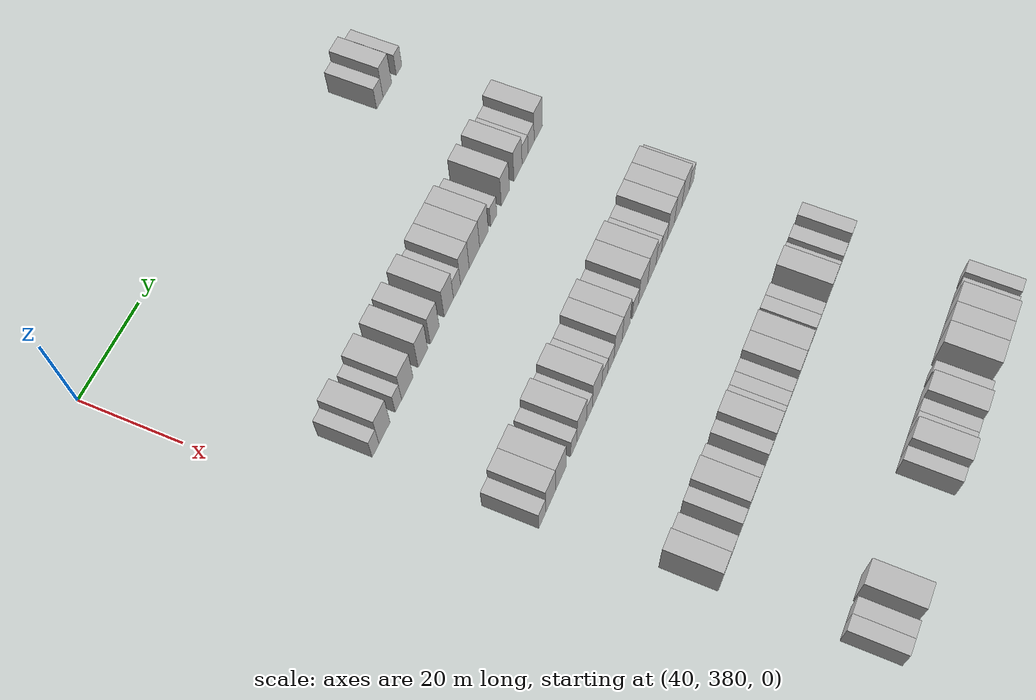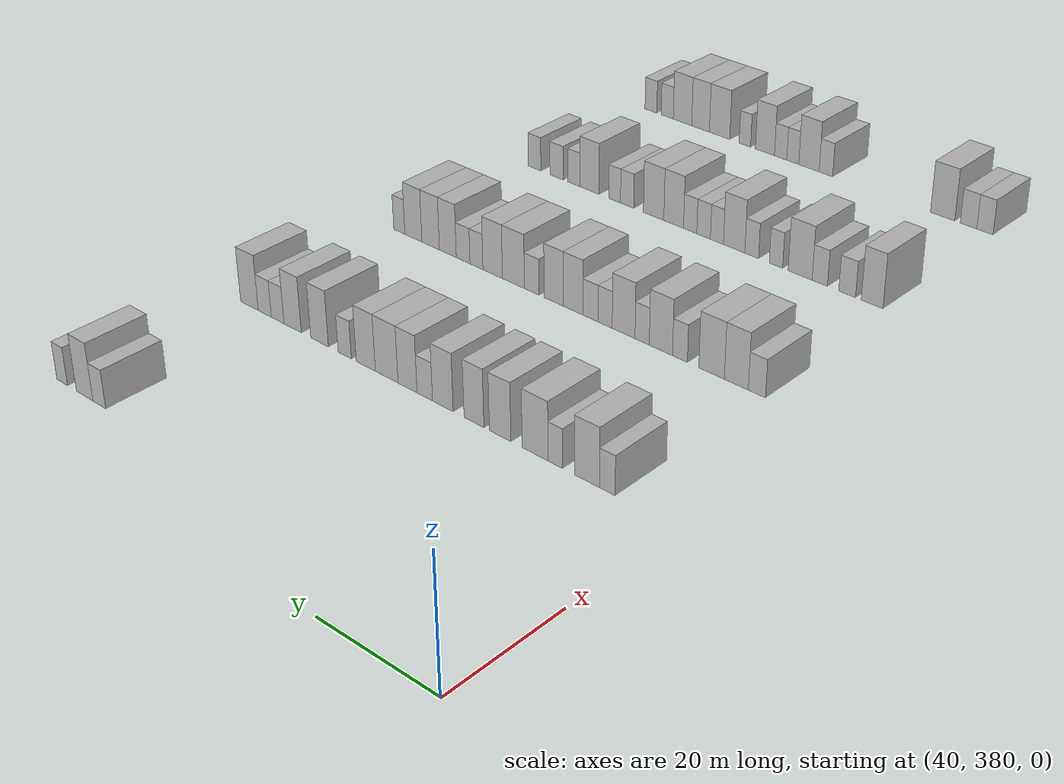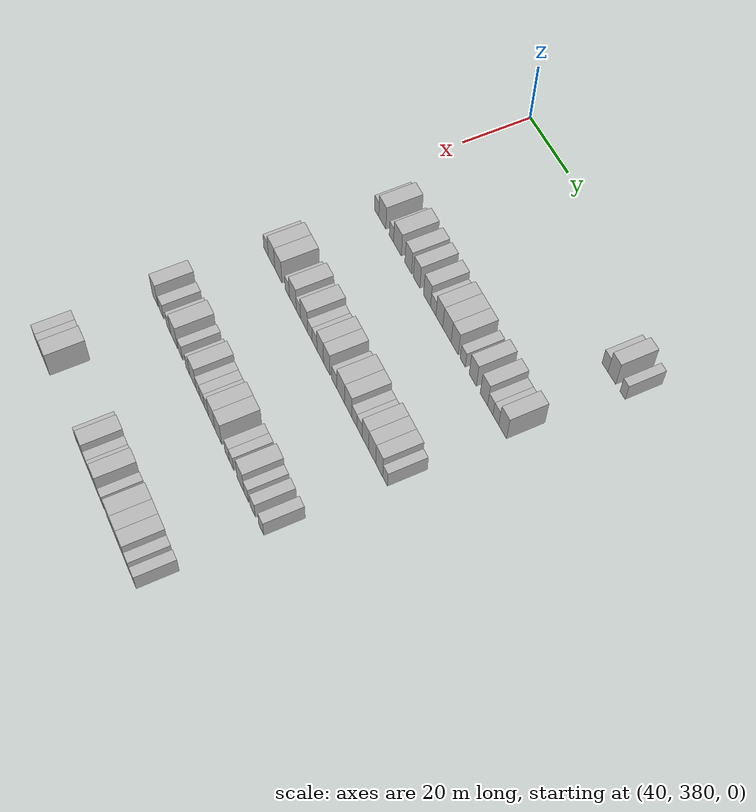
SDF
<sdf version="1.6">
 <world name="default">
  <model name="building_448">
   <static>1</static>
   <pose>55.0000 454.1444 0 0.000000 0.000000 0.000000</pose>
   <link name="link">
    <pose>0 0 3.00 0 0 0</pose>
    <collision name="collision"><geometry><box><size>10.0000 2.7748 6.0000</size></box></geometry></collision>
    <visual name="visual">
     <cast_shadows>0</cast_shadows>
     <geometry><box><size>10.0000 2.7748 6.0000</size></box></geometry>
     <material>
      <script>
       <uri>model://HANNAS_wall/materials/scripts</uri>
       <uri>model://HANNAS_wall/materials/textures</uri>
       <name>vrc/HANNAS_wall</name>
      </script>
     </material>
    </visual>
   </link>
  </model>
  <model name="building_449">
   <static>1</static>
   <pose>55.0000 457.3681 0 0.000000 0.000000 0.000000</pose>
   <link name="link">
    <pose>0 0 4.50 0 0 0</pose>
    <collision name="collision"><geometry><box><size>10.0000 3.6726 9.0000</size></box></geometry></collision>
    <visual name="visual">
     <cast_shadows>0</cast_shadows>
     <geometry><box><size>10.0000 3.6726 9.0000</size></box></geometry>
     <material>
      <script>
       <uri>model://HANNAS_wall/materials/scripts</uri>
       <uri>model://HANNAS_wall/materials/textures</uri>
       <name>vrc/HANNAS_wall</name>
      </script>
     </material>
    </visual>
   </link>
  </model>
  <model name="building_450">
   <static>1</static>
   <pose>55.0000 462.4099 0 0.000000 0.000000 0.000000</pose>
   <link name="link">
    <pose>0 0 3.00 0 0 0</pose>
    <collision name="collision"><geometry><box><size>10.0000 2.4111 6.0000</size></box></geometry></collision>
    <visual name="visual">
     <cast_shadows>0</cast_shadows>
     <geometry><box><size>10.0000 2.4111 6.0000</size></box></geometry>
     <material>
      <script>
       <uri>model://HANNAS_wall/materials/scripts</uri>
       <uri>model://HANNAS_wall/materials/textures</uri>
       <name>vrc/HANNAS_wall</name>
      </script>
     </material>
    </visual>
   </link>
  </model>
  <model name="building_667">
   <static>1</static>
   <pose>85.0000 391.1163 0 0.000000 0.000000 0.000000</pose>
   <link name="link">
    <pose>0 0 3.00 0 0 0</pose>
    <collision name="collision"><geometry><box><size>10.0000 2.5467 6.0000</size></box></geometry></collision>
    <visual name="visual">
     <cast_shadows>0</cast_shadows>
     <geometry><box><size>10.0000 2.5467 6.0000</size></box></geometry>
     <material>
      <script>
       <uri>model://HANNAS_wall/materials/scripts</uri>
       <uri>model://HANNAS_wall/materials/textures</uri>
       <name>vrc/HANNAS_wall</name>
      </script>
     </material>
    </visual>
   </link>
  </model>
  <model name="building_668">
   <static>1</static>
   <pose>85.0000 394.4743 0 0.000000 0.000000 0.000000</pose>
   <link name="link">
    <pose>0 0 4.50 0 0 0</pose>
    <collision name="collision"><geometry><box><size>10.0000 4.1693 9.0000</size></box></geometry></collision>
    <visual name="visual">
     <cast_shadows>0</cast_shadows>
     <geometry><box><size>10.0000 4.1693 9.0000</size></box></geometry>
     <material>
      <script>
       <uri>model://HANNAS_wall/materials/scripts</uri>
       <uri>model://HANNAS_wall/materials/textures</uri>
       <name>vrc/HANNAS_wall</name>
      </script>
     </material>
    </visual>
   </link>
  </model>
  <model name="building_669">
   <static>1</static>
   <pose>85.0000 399.7932 0 0.000000 0.000000 0.000000</pose>
   <link name="link">
    <pose>0 0 3.00 0 0 0</pose>
    <collision name="collision"><geometry><box><size>10.0000 2.4685 6.0000</size></box></geometry></collision>
    <visual name="visual">
     <cast_shadows>0</cast_shadows>
     <geometry><box><size>10.0000 2.4685 6.0000</size></box></geometry>
     <material>
      <script>
       <uri>model://HANNAS_wall/materials/scripts</uri>
       <uri>model://HANNAS_wall/materials/textures</uri>
       <name>vrc/HANNAS_wall</name>
      </script>
     </material>
    </visual>
   </link>
  </model>
  <model name="building_670">
   <static>1</static>
   <pose>85.0000 403.2650 0 0.000000 0.000000 0.000000</pose>
   <link name="link">
    <pose>0 0 4.50 0 0 0</pose>
    <collision name="collision"><geometry><box><size>10.0000 4.4751 9.0000</size></box></geometry></collision>
    <visual name="visual">
     <cast_shadows>0</cast_shadows>
     <geometry><box><size>10.0000 4.4751 9.0000</size></box></geometry>
     <material>
      <script>
       <uri>model://HANNAS_wall/materials/scripts</uri>
       <uri>model://HANNAS_wall/materials/textures</uri>
       <name>vrc/HANNAS_wall</name>
      </script>
     </material>
    </visual>
   </link>
  </model>
  <model name="building_671">
   <static>1</static>
   <pose>85.0000 409.4116 0 0.000000 0.000000 0.000000</pose>
   <link name="link">
    <pose>0 0 4.50 0 0 0</pose>
    <collision name="collision"><geometry><box><size>10.0000 3.8179 9.0000</size></box></geometry></collision>
    <visual name="visual">
     <cast_shadows>0</cast_shadows>
     <geometry><box><size>10.0000 3.8179 9.0000</size></box></geometry>
     <material>
      <script>
       <uri>model://HANNAS_wall/materials/scripts</uri>
       <uri>model://HANNAS_wall/materials/textures</uri>
       <name>vrc/HANNAS_wall</name>
      </script>
     </material>
    </visual>
   </link>
  </model>
  <model name="building_672">
   <static>1</static>
   <pose>85.0000 414.1322 0 0.000000 0.000000 0.000000</pose>
   <link name="link">
    <pose>0 0 4.50 0 0 0</pose>
    <collision name="collision"><geometry><box><size>10.0000 3.6234 9.0000</size></box></geometry></collision>
    <visual name="visual">
     <cast_shadows>0</cast_shadows>
     <geometry><box><size>10.0000 3.6234 9.0000</size></box></geometry>
     <material>
      <script>
       <uri>model://HANNAS_wall/materials/scripts</uri>
       <uri>model://HANNAS_wall/materials/textures</uri>
       <name>vrc/HANNAS_wall</name>
      </script>
     </material>
    </visual>
   </link>
  </model>
  <model name="building_673">
   <static>1</static>
   <pose>85.0000 419.8813 0 0.000000 0.000000 0.000000</pose>
   <link name="link">
    <pose>0 0 4.50 0 0 0</pose>
    <collision name="collision"><geometry><box><size>10.0000 3.8748 9.0000</size></box></geometry></collision>
    <visual name="visual">
     <cast_shadows>0</cast_shadows>
     <geometry><box><size>10.0000 3.8748 9.0000</size></box></geometry>
     <material>
      <script>
       <uri>model://HANNAS_wall/materials/scripts</uri>
       <uri>model://HANNAS_wall/materials/textures</uri>
       <name>vrc/HANNAS_wall</name>
      </script>
     </material>
    </visual>
   </link>
  </model>
  <model name="building_674">
   <static>1</static>
   <pose>85.0000 423.2856 0 0.000000 0.000000 0.000000</pose>
   <link name="link">
    <pose>0 0 3.00 0 0 0</pose>
    <collision name="collision"><geometry><box><size>10.0000 2.9337 6.0000</size></box></geometry></collision>
    <visual name="visual">
     <cast_shadows>0</cast_shadows>
     <geometry><box><size>10.0000 2.9337 6.0000</size></box></geometry>
     <material>
      <script>
       <uri>model://HANNAS_wall/materials/scripts</uri>
       <uri>model://HANNAS_wall/materials/textures</uri>
       <name>vrc/HANNAS_wall</name>
      </script>
     </material>
    </visual>
   </link>
  </model>
  <model name="building_675">
   <static>1</static>
   <pose>85.0000 426.5875 0 0.000000 0.000000 0.000000</pose>
   <link name="link">
    <pose>0 0 4.50 0 0 0</pose>
    <collision name="collision"><geometry><box><size>10.0000 3.6701 9.0000</size></box></geometry></collision>
    <visual name="visual">
     <cast_shadows>0</cast_shadows>
     <geometry><box><size>10.0000 3.6701 9.0000</size></box></geometry>
     <material>
      <script>
       <uri>model://HANNAS_wall/materials/scripts</uri>
       <uri>model://HANNAS_wall/materials/textures</uri>
       <name>vrc/HANNAS_wall</name>
      </script>
     </material>
    </visual>
   </link>
  </model>
  <model name="building_676">
   <static>1</static>
   <pose>85.0000 430.6540 0 0.000000 0.000000 0.000000</pose>
   <link name="link">
    <pose>0 0 4.50 0 0 0</pose>
    <collision name="collision"><geometry><box><size>10.0000 4.4630 9.0000</size></box></geometry></collision>
    <visual name="visual">
     <cast_shadows>0</cast_shadows>
     <geometry><box><size>10.0000 4.4630 9.0000</size></box></geometry>
     <material>
      <script>
       <uri>model://HANNAS_wall/materials/scripts</uri>
       <uri>model://HANNAS_wall/materials/textures</uri>
       <name>vrc/HANNAS_wall</name>
      </script>
     </material>
    </visual>
   </link>
  </model>
  <model name="building_677">
   <static>1</static>
   <pose>85.0000 434.7889 0 0.000000 0.000000 0.000000</pose>
   <link name="link">
    <pose>0 0 4.50 0 0 0</pose>
    <collision name="collision"><geometry><box><size>10.0000 3.8067 9.0000</size></box></geometry></collision>
    <visual name="visual">
     <cast_shadows>0</cast_shadows>
     <geometry><box><size>10.0000 3.8067 9.0000</size></box></geometry>
     <material>
      <script>
       <uri>model://HANNAS_wall/materials/scripts</uri>
       <uri>model://HANNAS_wall/materials/textures</uri>
       <name>vrc/HANNAS_wall</name>
      </script>
     </material>
    </visual>
   </link>
  </model>
  <model name="building_678">
   <static>1</static>
   <pose>85.0000 439.0395 0 0.000000 0.000000 0.000000</pose>
   <link name="link">
    <pose>0 0 3.00 0 0 0</pose>
    <collision name="collision"><geometry><box><size>10.0000 2.6946 6.0000</size></box></geometry></collision>
    <visual name="visual">
     <cast_shadows>0</cast_shadows>
     <geometry><box><size>10.0000 2.6946 6.0000</size></box></geometry>
     <material>
      <script>
       <uri>model://HANNAS_wall/materials/scripts</uri>
       <uri>model://HANNAS_wall/materials/textures</uri>
       <name>vrc/HANNAS_wall</name>
      </script>
     </material>
    </visual>
   </link>
  </model>
  <model name="building_679">
   <static>1</static>
   <pose>85.0000 444.2269 0 0.000000 0.000000 0.000000</pose>
   <link name="link">
    <pose>0 0 4.50 0 0 0</pose>
    <collision name="collision"><geometry><box><size>10.0000 3.6802 9.0000</size></box></geometry></collision>
    <visual name="visual">
     <cast_shadows>0</cast_shadows>
     <geometry><box><size>10.0000 3.6802 9.0000</size></box></geometry>
     <material>
      <script>
       <uri>model://HANNAS_wall/materials/scripts</uri>
       <uri>model://HANNAS_wall/materials/textures</uri>
       <name>vrc/HANNAS_wall</name>
      </script>
     </material>
    </visual>
   </link>
  </model>
  <model name="building_680">
   <static>1</static>
   <pose>85.0000 449.9162 0 0.000000 0.000000 0.000000</pose>
   <link name="link">
    <pose>0 0 4.50 0 0 0</pose>
    <collision name="collision"><geometry><box><size>10.0000 3.6982 9.0000</size></box></geometry></collision>
    <visual name="visual">
     <cast_shadows>0</cast_shadows>
     <geometry><box><size>10.0000 3.6982 9.0000</size></box></geometry>
     <material>
      <script>
       <uri>model://HANNAS_wall/materials/scripts</uri>
       <uri>model://HANNAS_wall/materials/textures</uri>
       <name>vrc/HANNAS_wall</name>
      </script>
     </material>
    </visual>
   </link>
  </model>
  <model name="building_681">
   <static>1</static>
   <pose>85.0000 453.1391 0 0.000000 0.000000 0.000000</pose>
   <link name="link">
    <pose>0 0 3.00 0 0 0</pose>
    <collision name="collision"><geometry><box><size>10.0000 2.7476 6.0000</size></box></geometry></collision>
    <visual name="visual">
     <cast_shadows>0</cast_shadows>
     <geometry><box><size>10.0000 2.7476 6.0000</size></box></geometry>
     <material>
      <script>
       <uri>model://HANNAS_wall/materials/scripts</uri>
       <uri>model://HANNAS_wall/materials/textures</uri>
       <name>vrc/HANNAS_wall</name>
      </script>
     </material>
    </visual>
   </link>
  </model>
  <model name="building_682">
   <static>1</static>
   <pose>85.0000 455.9436 0 0.000000 0.000000 0.000000</pose>
   <link name="link">
    <pose>0 0 3.00 0 0 0</pose>
    <collision name="collision"><geometry><box><size>10.0000 2.8615 6.0000</size></box></geometry></collision>
    <visual name="visual">
     <cast_shadows>0</cast_shadows>
     <geometry><box><size>10.0000 2.8615 6.0000</size></box></geometry>
     <material>
      <script>
       <uri>model://HANNAS_wall/materials/scripts</uri>
       <uri>model://HANNAS_wall/materials/textures</uri>
       <name>vrc/HANNAS_wall</name>
      </script>
     </material>
    </visual>
   </link>
  </model>
  <model name="building_683">
   <static>1</static>
   <pose>85.0000 459.3144 0 0.000000 0.000000 0.000000</pose>
   <link name="link">
    <pose>0 0 4.50 0 0 0</pose>
    <collision name="collision"><geometry><box><size>10.0000 3.8802 9.0000</size></box></geometry></collision>
    <visual name="visual">
     <cast_shadows>0</cast_shadows>
     <geometry><box><size>10.0000 3.8802 9.0000</size></box></geometry>
     <material>
      <script>
       <uri>model://HANNAS_wall/materials/scripts</uri>
       <uri>model://HANNAS_wall/materials/textures</uri>
       <name>vrc/HANNAS_wall</name>
      </script>
     </material>
    </visual>
   </link>
  </model>
  <model name="building_897">
   <static>1</static>
   <pose>115.0000 390.6271 0 0.000000 0.000000 0.000000</pose>
   <link name="link">
    <pose>0 0 3.00 0 0 0</pose>
    <collision name="collision"><geometry><box><size>10.0000 2.8628 6.0000</size></box></geometry></collision>
    <visual name="visual">
     <cast_shadows>0</cast_shadows>
     <geometry><box><size>10.0000 2.8628 6.0000</size></box></geometry>
     <material>
      <script>
       <uri>model://HANNAS_wall/materials/scripts</uri>
       <uri>model://HANNAS_wall/materials/textures</uri>
       <name>vrc/HANNAS_wall</name>
      </script>
     </material>
    </visual>
   </link>
  </model>
  <model name="building_898">
   <static>1</static>
   <pose>115.0000 394.0909 0 0.000000 0.000000 0.000000</pose>
   <link name="link">
    <pose>0 0 4.50 0 0 0</pose>
    <collision name="collision"><geometry><box><size>10.0000 4.0648 9.0000</size></box></geometry></collision>
    <visual name="visual">
     <cast_shadows>0</cast_shadows>
     <geometry><box><size>10.0000 4.0648 9.0000</size></box></geometry>
     <material>
      <script>
       <uri>model://HANNAS_wall/materials/scripts</uri>
       <uri>model://HANNAS_wall/materials/textures</uri>
       <name>vrc/HANNAS_wall</name>
      </script>
     </material>
    </visual>
   </link>
  </model>
  <model name="building_899">
   <static>1</static>
   <pose>115.0000 398.3278 0 0.000000 0.000000 0.000000</pose>
   <link name="link">
    <pose>0 0 4.50 0 0 0</pose>
    <collision name="collision"><geometry><box><size>10.0000 4.4091 9.0000</size></box></geometry></collision>
    <visual name="visual">
     <cast_shadows>0</cast_shadows>
     <geometry><box><size>10.0000 4.4091 9.0000</size></box></geometry>
     <material>
      <script>
       <uri>model://HANNAS_wall/materials/scripts</uri>
       <uri>model://HANNAS_wall/materials/textures</uri>
       <name>vrc/HANNAS_wall</name>
      </script>
     </material>
    </visual>
   </link>
  </model>
  <model name="building_900">
   <static>1</static>
   <pose>115.0000 403.8495 0 0.000000 0.000000 0.000000</pose>
   <link name="link">
    <pose>0 0 3.00 0 0 0</pose>
    <collision name="collision"><geometry><box><size>10.0000 2.6343 6.0000</size></box></geometry></collision>
    <visual name="visual">
     <cast_shadows>0</cast_shadows>
     <geometry><box><size>10.0000 2.6343 6.0000</size></box></geometry>
     <material>
      <script>
       <uri>model://HANNAS_wall/materials/scripts</uri>
       <uri>model://HANNAS_wall/materials/textures</uri>
       <name>vrc/HANNAS_wall</name>
      </script>
     </material>
    </visual>
   </link>
  </model>
  <model name="building_901">
   <static>1</static>
   <pose>115.0000 407.2513 0 0.000000 0.000000 0.000000</pose>
   <link name="link">
    <pose>0 0 4.50 0 0 0</pose>
    <collision name="collision"><geometry><box><size>10.0000 4.1693 9.0000</size></box></geometry></collision>
    <visual name="visual">
     <cast_shadows>0</cast_shadows>
     <geometry><box><size>10.0000 4.1693 9.0000</size></box></geometry>
     <material>
      <script>
       <uri>model://HANNAS_wall/materials/scripts</uri>
       <uri>model://HANNAS_wall/materials/textures</uri>
       <name>vrc/HANNAS_wall</name>
      </script>
     </material>
    </visual>
   </link>
  </model>
  <model name="building_902">
   <static>1</static>
   <pose>115.0000 410.6361 0 0.000000 0.000000 0.000000</pose>
   <link name="link">
    <pose>0 0 3.00 0 0 0</pose>
    <collision name="collision"><geometry><box><size>10.0000 2.6003 6.0000</size></box></geometry></collision>
    <visual name="visual">
     <cast_shadows>0</cast_shadows>
     <geometry><box><size>10.0000 2.6003 6.0000</size></box></geometry>
     <material>
      <script>
       <uri>model://HANNAS_wall/materials/scripts</uri>
       <uri>model://HANNAS_wall/materials/textures</uri>
       <name>vrc/HANNAS_wall</name>
      </script>
     </material>
    </visual>
   </link>
  </model>
  <model name="building_903">
   <static>1</static>
   <pose>115.0000 414.0457 0 0.000000 0.000000 0.000000</pose>
   <link name="link">
    <pose>0 0 4.50 0 0 0</pose>
    <collision name="collision"><geometry><box><size>10.0000 4.2190 9.0000</size></box></geometry></collision>
    <visual name="visual">
     <cast_shadows>0</cast_shadows>
     <geometry><box><size>10.0000 4.2190 9.0000</size></box></geometry>
     <material>
      <script>
       <uri>model://HANNAS_wall/materials/scripts</uri>
       <uri>model://HANNAS_wall/materials/textures</uri>
       <name>vrc/HANNAS_wall</name>
      </script>
     </material>
    </visual>
   </link>
  </model>
  <model name="building_904">
   <static>1</static>
   <pose>115.0000 417.4762 0 0.000000 0.000000 0.000000</pose>
   <link name="link">
    <pose>0 0 3.00 0 0 0</pose>
    <collision name="collision"><geometry><box><size>10.0000 2.6420 6.0000</size></box></geometry></collision>
    <visual name="visual">
     <cast_shadows>0</cast_shadows>
     <geometry><box><size>10.0000 2.6420 6.0000</size></box></geometry>
     <material>
      <script>
       <uri>model://HANNAS_wall/materials/scripts</uri>
       <uri>model://HANNAS_wall/materials/textures</uri>
       <name>vrc/HANNAS_wall</name>
      </script>
     </material>
    </visual>
   </link>
  </model>
  <model name="building_905">
   <static>1</static>
   <pose>115.0000 420.2600 0 0.000000 0.000000 0.000000</pose>
   <link name="link">
    <pose>0 0 3.00 0 0 0</pose>
    <collision name="collision"><geometry><box><size>10.0000 2.9254 6.0000</size></box></geometry></collision>
    <visual name="visual">
     <cast_shadows>0</cast_shadows>
     <geometry><box><size>10.0000 2.9254 6.0000</size></box></geometry>
     <material>
      <script>
       <uri>model://HANNAS_wall/materials/scripts</uri>
       <uri>model://HANNAS_wall/materials/textures</uri>
       <name>vrc/HANNAS_wall</name>
      </script>
     </material>
    </visual>
   </link>
  </model>
  <model name="building_906">
   <static>1</static>
   <pose>115.0000 423.5840 0 0.000000 0.000000 0.000000</pose>
   <link name="link">
    <pose>0 0 4.50 0 0 0</pose>
    <collision name="collision"><geometry><box><size>10.0000 3.7226 9.0000</size></box></geometry></collision>
    <visual name="visual">
     <cast_shadows>0</cast_shadows>
     <geometry><box><size>10.0000 3.7226 9.0000</size></box></geometry>
     <material>
      <script>
       <uri>model://HANNAS_wall/materials/scripts</uri>
       <uri>model://HANNAS_wall/materials/textures</uri>
       <name>vrc/HANNAS_wall</name>
      </script>
     </material>
    </visual>
   </link>
  </model>
  <model name="building_907">
   <static>1</static>
   <pose>115.0000 427.3121 0 0.000000 0.000000 0.000000</pose>
   <link name="link">
    <pose>0 0 4.50 0 0 0</pose>
    <collision name="collision"><geometry><box><size>10.0000 3.7337 9.0000</size></box></geometry></collision>
    <visual name="visual">
     <cast_shadows>0</cast_shadows>
     <geometry><box><size>10.0000 3.7337 9.0000</size></box></geometry>
     <material>
      <script>
       <uri>model://HANNAS_wall/materials/scripts</uri>
       <uri>model://HANNAS_wall/materials/textures</uri>
       <name>vrc/HANNAS_wall</name>
      </script>
     </material>
    </visual>
   </link>
  </model>
  <model name="building_908">
   <static>1</static>
   <pose>115.0000 431.6362 0 0.000000 0.000000 0.000000</pose>
   <link name="link">
    <pose>0 0 3.00 0 0 0</pose>
    <collision name="collision"><geometry><box><size>10.0000 2.9145 6.0000</size></box></geometry></collision>
    <visual name="visual">
     <cast_shadows>0</cast_shadows>
     <geometry><box><size>10.0000 2.9145 6.0000</size></box></geometry>
     <material>
      <script>
       <uri>model://HANNAS_wall/materials/scripts</uri>
       <uri>model://HANNAS_wall/materials/textures</uri>
       <name>vrc/HANNAS_wall</name>
      </script>
     </material>
    </visual>
   </link>
  </model>
  <model name="building_909">
   <static>1</static>
   <pose>115.0000 435.3174 0 0.000000 0.000000 0.000000</pose>
   <link name="link">
    <pose>0 0 4.50 0 0 0</pose>
    <collision name="collision"><geometry><box><size>10.0000 4.4480 9.0000</size></box></geometry></collision>
    <visual name="visual">
     <cast_shadows>0</cast_shadows>
     <geometry><box><size>10.0000 4.4480 9.0000</size></box></geometry>
     <material>
      <script>
       <uri>model://HANNAS_wall/materials/scripts</uri>
       <uri>model://HANNAS_wall/materials/textures</uri>
       <name>vrc/HANNAS_wall</name>
      </script>
     </material>
    </visual>
   </link>
  </model>
  <model name="building_910">
   <static>1</static>
   <pose>115.0000 439.5522 0 0.000000 0.000000 0.000000</pose>
   <link name="link">
    <pose>0 0 4.50 0 0 0</pose>
    <collision name="collision"><geometry><box><size>10.0000 4.0216 9.0000</size></box></geometry></collision>
    <visual name="visual">
     <cast_shadows>0</cast_shadows>
     <geometry><box><size>10.0000 4.0216 9.0000</size></box></geometry>
     <material>
      <script>
       <uri>model://HANNAS_wall/materials/scripts</uri>
       <uri>model://HANNAS_wall/materials/textures</uri>
       <name>vrc/HANNAS_wall</name>
      </script>
     </material>
    </visual>
   </link>
  </model>
  <model name="building_911">
   <static>1</static>
   <pose>115.0000 442.9079 0 0.000000 0.000000 0.000000</pose>
   <link name="link">
    <pose>0 0 3.00 0 0 0</pose>
    <collision name="collision"><geometry><box><size>10.0000 2.6898 6.0000</size></box></geometry></collision>
    <visual name="visual">
     <cast_shadows>0</cast_shadows>
     <geometry><box><size>10.0000 2.6898 6.0000</size></box></geometry>
     <material>
      <script>
       <uri>model://HANNAS_wall/materials/scripts</uri>
       <uri>model://HANNAS_wall/materials/textures</uri>
       <name>vrc/HANNAS_wall</name>
      </script>
     </material>
    </visual>
   </link>
  </model>
  <model name="building_912">
   <static>1</static>
   <pose>115.0000 445.6960 0 0.000000 0.000000 0.000000</pose>
   <link name="link">
    <pose>0 0 3.00 0 0 0</pose>
    <collision name="collision"><geometry><box><size>10.0000 2.8863 6.0000</size></box></geometry></collision>
    <visual name="visual">
     <cast_shadows>0</cast_shadows>
     <geometry><box><size>10.0000 2.8863 6.0000</size></box></geometry>
     <material>
      <script>
       <uri>model://HANNAS_wall/materials/scripts</uri>
       <uri>model://HANNAS_wall/materials/textures</uri>
       <name>vrc/HANNAS_wall</name>
      </script>
     </material>
    </visual>
   </link>
  </model>
  <model name="building_913">
   <static>1</static>
   <pose>115.0000 448.9404 0 0.000000 0.000000 0.000000</pose>
   <link name="link">
    <pose>0 0 4.50 0 0 0</pose>
    <collision name="collision"><geometry><box><size>10.0000 3.6024 9.0000</size></box></geometry></collision>
    <visual name="visual">
     <cast_shadows>0</cast_shadows>
     <geometry><box><size>10.0000 3.6024 9.0000</size></box></geometry>
     <material>
      <script>
       <uri>model://HANNAS_wall/materials/scripts</uri>
       <uri>model://HANNAS_wall/materials/textures</uri>
       <name>vrc/HANNAS_wall</name>
      </script>
     </material>
    </visual>
   </link>
  </model>
  <model name="building_914">
   <static>1</static>
   <pose>115.0000 452.6306 0 0.000000 0.000000 0.000000</pose>
   <link name="link">
    <pose>0 0 4.50 0 0 0</pose>
    <collision name="collision"><geometry><box><size>10.0000 3.7782 9.0000</size></box></geometry></collision>
    <visual name="visual">
     <cast_shadows>0</cast_shadows>
     <geometry><box><size>10.0000 3.7782 9.0000</size></box></geometry>
     <material>
      <script>
       <uri>model://HANNAS_wall/materials/scripts</uri>
       <uri>model://HANNAS_wall/materials/textures</uri>
       <name>vrc/HANNAS_wall</name>
      </script>
     </material>
    </visual>
   </link>
  </model>
  <model name="building_915">
   <static>1</static>
   <pose>115.0000 456.3951 0 0.000000 0.000000 0.000000</pose>
   <link name="link">
    <pose>0 0 4.50 0 0 0</pose>
    <collision name="collision"><geometry><box><size>10.0000 3.7507 9.0000</size></box></geometry></collision>
    <visual name="visual">
     <cast_shadows>0</cast_shadows>
     <geometry><box><size>10.0000 3.7507 9.0000</size></box></geometry>
     <material>
      <script>
       <uri>model://HANNAS_wall/materials/scripts</uri>
       <uri>model://HANNAS_wall/materials/textures</uri>
       <name>vrc/HANNAS_wall</name>
      </script>
     </material>
    </visual>
   </link>
  </model>
  <model name="building_916">
   <static>1</static>
   <pose>115.0000 459.5024 0 0.000000 0.000000 0.000000</pose>
   <link name="link">
    <pose>0 0 3.00 0 0 0</pose>
    <collision name="collision"><geometry><box><size>10.0000 2.4638 6.0000</size></box></geometry></collision>
    <visual name="visual">
     <cast_shadows>0</cast_shadows>
     <geometry><box><size>10.0000 2.4638 6.0000</size></box></geometry>
     <material>
      <script>
       <uri>model://HANNAS_wall/materials/scripts</uri>
       <uri>model://HANNAS_wall/materials/textures</uri>
       <name>vrc/HANNAS_wall</name>
      </script>
     </material>
    </visual>
   </link>
  </model>
  <model name="building_1130">
   <static>1</static>
   <pose>145.0000 392.4905 0 0.000000 0.000000 0.000000</pose>
   <link name="link">
    <pose>0 0 4.50 0 0 0</pose>
    <collision name="collision"><geometry><box><size>10.0000 3.7561 9.0000</size></box></geometry></collision>
    <visual name="visual">
     <cast_shadows>0</cast_shadows>
     <geometry><box><size>10.0000 3.7561 9.0000</size></box></geometry>
     <material>
      <script>
       <uri>model://HANNAS_wall/materials/scripts</uri>
       <uri>model://HANNAS_wall/materials/textures</uri>
       <name>vrc/HANNAS_wall</name>
      </script>
     </material>
    </visual>
   </link>
  </model>
  <model name="building_1131">
   <static>1</static>
   <pose>145.0000 396.8437 0 0.000000 0.000000 0.000000</pose>
   <link name="link">
    <pose>0 0 3.00 0 0 0</pose>
    <collision name="collision"><geometry><box><size>10.0000 2.9502 6.0000</size></box></geometry></collision>
    <visual name="visual">
     <cast_shadows>0</cast_shadows>
     <geometry><box><size>10.0000 2.9502 6.0000</size></box></geometry>
     <material>
      <script>
       <uri>model://HANNAS_wall/materials/scripts</uri>
       <uri>model://HANNAS_wall/materials/textures</uri>
       <name>vrc/HANNAS_wall</name>
      </script>
     </material>
    </visual>
   </link>
  </model>
  <model name="building_1132">
   <static>1</static>
   <pose>145.0000 401.6943 0 0.000000 0.000000 0.000000</pose>
   <link name="link">
    <pose>0 0 3.00 0 0 0</pose>
    <collision name="collision"><geometry><box><size>10.0000 2.7511 6.0000</size></box></geometry></collision>
    <visual name="visual">
     <cast_shadows>0</cast_shadows>
     <geometry><box><size>10.0000 2.7511 6.0000</size></box></geometry>
     <material>
      <script>
       <uri>model://HANNAS_wall/materials/scripts</uri>
       <uri>model://HANNAS_wall/materials/textures</uri>
       <name>vrc/HANNAS_wall</name>
      </script>
     </material>
    </visual>
   </link>
  </model>
  <model name="building_1133">
   <static>1</static>
   <pose>145.0000 405.2600 0 0.000000 0.000000 0.000000</pose>
   <link name="link">
    <pose>0 0 4.50 0 0 0</pose>
    <collision name="collision"><geometry><box><size>10.0000 4.3803 9.0000</size></box></geometry></collision>
    <visual name="visual">
     <cast_shadows>0</cast_shadows>
     <geometry><box><size>10.0000 4.3803 9.0000</size></box></geometry>
     <material>
      <script>
       <uri>model://HANNAS_wall/materials/scripts</uri>
       <uri>model://HANNAS_wall/materials/textures</uri>
       <name>vrc/HANNAS_wall</name>
      </script>
     </material>
    </visual>
   </link>
  </model>
  <model name="building_1134">
   <static>1</static>
   <pose>145.0000 409.6935 0 0.000000 0.000000 0.000000</pose>
   <link name="link">
    <pose>0 0 3.00 0 0 0</pose>
    <collision name="collision"><geometry><box><size>10.0000 2.4865 6.0000</size></box></geometry></collision>
    <visual name="visual">
     <cast_shadows>0</cast_shadows>
     <geometry><box><size>10.0000 2.4865 6.0000</size></box></geometry>
     <material>
      <script>
       <uri>model://HANNAS_wall/materials/scripts</uri>
       <uri>model://HANNAS_wall/materials/textures</uri>
       <name>vrc/HANNAS_wall</name>
      </script>
     </material>
    </visual>
   </link>
  </model>
  <model name="building_1135">
   <static>1</static>
   <pose>145.0000 414.2327 0 0.000000 0.000000 0.000000</pose>
   <link name="link">
    <pose>0 0 3.00 0 0 0</pose>
    <collision name="collision"><geometry><box><size>10.0000 2.5920 6.0000</size></box></geometry></collision>
    <visual name="visual">
     <cast_shadows>0</cast_shadows>
     <geometry><box><size>10.0000 2.5920 6.0000</size></box></geometry>
     <material>
      <script>
       <uri>model://HANNAS_wall/materials/scripts</uri>
       <uri>model://HANNAS_wall/materials/textures</uri>
       <name>vrc/HANNAS_wall</name>
      </script>
     </material>
    </visual>
   </link>
  </model>
  <model name="building_1136">
   <static>1</static>
   <pose>145.0000 417.5754 0 0.000000 0.000000 0.000000</pose>
   <link name="link">
    <pose>0 0 4.50 0 0 0</pose>
    <collision name="collision"><geometry><box><size>10.0000 4.0933 9.0000</size></box></geometry></collision>
    <visual name="visual">
     <cast_shadows>0</cast_shadows>
     <geometry><box><size>10.0000 4.0933 9.0000</size></box></geometry>
     <material>
      <script>
       <uri>model://HANNAS_wall/materials/scripts</uri>
       <uri>model://HANNAS_wall/materials/textures</uri>
       <name>vrc/HANNAS_wall</name>
      </script>
     </material>
    </visual>
   </link>
  </model>
  <model name="building_1137">
   <static>1</static>
   <pose>145.0000 420.8837 0 0.000000 0.000000 0.000000</pose>
   <link name="link">
    <pose>0 0 3.00 0 0 0</pose>
    <collision name="collision"><geometry><box><size>10.0000 2.5232 6.0000</size></box></geometry></collision>
    <visual name="visual">
     <cast_shadows>0</cast_shadows>
     <geometry><box><size>10.0000 2.5232 6.0000</size></box></geometry>
     <material>
      <script>
       <uri>model://HANNAS_wall/materials/scripts</uri>
       <uri>model://HANNAS_wall/materials/textures</uri>
       <name>vrc/HANNAS_wall</name>
      </script>
     </material>
    </visual>
   </link>
  </model>
  <model name="building_1138">
   <static>1</static>
   <pose>145.0000 423.4825 0 0.000000 0.000000 0.000000</pose>
   <link name="link">
    <pose>0 0 3.00 0 0 0</pose>
    <collision name="collision"><geometry><box><size>10.0000 2.6744 6.0000</size></box></geometry></collision>
    <visual name="visual">
     <cast_shadows>0</cast_shadows>
     <geometry><box><size>10.0000 2.6744 6.0000</size></box></geometry>
     <material>
      <script>
       <uri>model://HANNAS_wall/materials/scripts</uri>
       <uri>model://HANNAS_wall/materials/textures</uri>
       <name>vrc/HANNAS_wall</name>
      </script>
     </material>
    </visual>
   </link>
  </model>
  <model name="building_1139">
   <static>1</static>
   <pose>145.0000 426.1245 0 0.000000 0.000000 0.000000</pose>
   <link name="link">
    <pose>0 0 3.00 0 0 0</pose>
    <collision name="collision"><geometry><box><size>10.0000 2.6097 6.0000</size></box></geometry></collision>
    <visual name="visual">
     <cast_shadows>0</cast_shadows>
     <geometry><box><size>10.0000 2.6097 6.0000</size></box></geometry>
     <material>
      <script>
       <uri>model://HANNAS_wall/materials/scripts</uri>
       <uri>model://HANNAS_wall/materials/textures</uri>
       <name>vrc/HANNAS_wall</name>
      </script>
     </material>
    </visual>
   </link>
  </model>
  <model name="building_1140">
   <static>1</static>
   <pose>145.0000 429.3994 0 0.000000 0.000000 0.000000</pose>
   <link name="link">
    <pose>0 0 4.50 0 0 0</pose>
    <collision name="collision"><geometry><box><size>10.0000 3.9401 9.0000</size></box></geometry></collision>
    <visual name="visual">
     <cast_shadows>0</cast_shadows>
     <geometry><box><size>10.0000 3.9401 9.0000</size></box></geometry>
     <material>
      <script>
       <uri>model://HANNAS_wall/materials/scripts</uri>
       <uri>model://HANNAS_wall/materials/textures</uri>
       <name>vrc/HANNAS_wall</name>
      </script>
     </material>
    </visual>
   </link>
  </model>
  <model name="building_1141">
   <static>1</static>
   <pose>145.0000 433.4466 0 0.000000 0.000000 0.000000</pose>
   <link name="link">
    <pose>0 0 4.50 0 0 0</pose>
    <collision name="collision"><geometry><box><size>10.0000 4.1545 9.0000</size></box></geometry></collision>
    <visual name="visual">
     <cast_shadows>0</cast_shadows>
     <geometry><box><size>10.0000 4.1545 9.0000</size></box></geometry>
     <material>
      <script>
       <uri>model://HANNAS_wall/materials/scripts</uri>
       <uri>model://HANNAS_wall/materials/textures</uri>
       <name>vrc/HANNAS_wall</name>
      </script>
     </material>
    </visual>
   </link>
  </model>
  <model name="building_1142">
   <static>1</static>
   <pose>145.0000 438.8901 0 0.000000 0.000000 0.000000</pose>
   <link name="link">
    <pose>0 0 3.00 0 0 0</pose>
    <collision name="collision"><geometry><box><size>10.0000 2.7324 6.0000</size></box></geometry></collision>
    <visual name="visual">
     <cast_shadows>0</cast_shadows>
     <geometry><box><size>10.0000 2.7324 6.0000</size></box></geometry>
     <material>
      <script>
       <uri>model://HANNAS_wall/materials/scripts</uri>
       <uri>model://HANNAS_wall/materials/textures</uri>
       <name>vrc/HANNAS_wall</name>
      </script>
     </material>
    </visual>
   </link>
  </model>
  <model name="building_1143">
   <static>1</static>
   <pose>145.0000 441.5139 0 0.000000 0.000000 0.000000</pose>
   <link name="link">
    <pose>0 0 3.00 0 0 0</pose>
    <collision name="collision"><geometry><box><size>10.0000 2.5153 6.0000</size></box></geometry></collision>
    <visual name="visual">
     <cast_shadows>0</cast_shadows>
     <geometry><box><size>10.0000 2.5153 6.0000</size></box></geometry>
     <material>
      <script>
       <uri>model://HANNAS_wall/materials/scripts</uri>
       <uri>model://HANNAS_wall/materials/textures</uri>
       <name>vrc/HANNAS_wall</name>
      </script>
     </material>
    </visual>
   </link>
  </model>
  <model name="building_1144">
   <static>1</static>
   <pose>145.0000 446.8355 0 0.000000 0.000000 0.000000</pose>
   <link name="link">
    <pose>0 0 4.50 0 0 0</pose>
    <collision name="collision"><geometry><box><size>10.0000 4.1280 9.0000</size></box></geometry></collision>
    <visual name="visual">
     <cast_shadows>0</cast_shadows>
     <geometry><box><size>10.0000 4.1280 9.0000</size></box></geometry>
     <material>
      <script>
       <uri>model://HANNAS_wall/materials/scripts</uri>
       <uri>model://HANNAS_wall/materials/textures</uri>
       <name>vrc/HANNAS_wall</name>
      </script>
     </material>
    </visual>
   </link>
  </model>
  <model name="building_1145">
   <static>1</static>
   <pose>145.0000 450.1947 0 0.000000 0.000000 0.000000</pose>
   <link name="link">
    <pose>0 0 3.00 0 0 0</pose>
    <collision name="collision"><geometry><box><size>10.0000 2.5903 6.0000</size></box></geometry></collision>
    <visual name="visual">
     <cast_shadows>0</cast_shadows>
     <geometry><box><size>10.0000 2.5903 6.0000</size></box></geometry>
     <material>
      <script>
       <uri>model://HANNAS_wall/materials/scripts</uri>
       <uri>model://HANNAS_wall/materials/textures</uri>
       <name>vrc/HANNAS_wall</name>
      </script>
     </material>
    </visual>
   </link>
  </model>
  <model name="building_1146">
   <static>1</static>
   <pose>145.0000 453.9505 0 0.000000 0.000000 0.000000</pose>
   <link name="link">
    <pose>0 0 3.00 0 0 0</pose>
    <collision name="collision"><geometry><box><size>10.0000 2.9213 6.0000</size></box></geometry></collision>
    <visual name="visual">
     <cast_shadows>0</cast_shadows>
     <geometry><box><size>10.0000 2.9213 6.0000</size></box></geometry>
     <material>
      <script>
       <uri>model://HANNAS_wall/materials/scripts</uri>
       <uri>model://HANNAS_wall/materials/textures</uri>
       <name>vrc/HANNAS_wall</name>
      </script>
     </material>
    </visual>
   </link>
  </model>
  <model name="building_1147">
   <static>1</static>
   <pose>145.0000 458.8249 0 0.000000 0.000000 0.000000</pose>
   <link name="link">
    <pose>0 0 3.00 0 0 0</pose>
    <collision name="collision"><geometry><box><size>10.0000 2.8276 6.0000</size></box></geometry></collision>
    <visual name="visual">
     <cast_shadows>0</cast_shadows>
     <geometry><box><size>10.0000 2.8276 6.0000</size></box></geometry>
     <material>
      <script>
       <uri>model://HANNAS_wall/materials/scripts</uri>
       <uri>model://HANNAS_wall/materials/textures</uri>
       <name>vrc/HANNAS_wall</name>
      </script>
     </material>
    </visual>
   </link>
  </model>
  <model name="building_1350">
   <static>1</static>
   <pose>175.0000 391.9555 0 0.000000 0.000000 0.000000</pose>
   <link name="link">
    <pose>0 0 3.00 0 0 0</pose>
    <collision name="collision"><geometry><box><size>10.0000 2.8765 6.0000</size></box></geometry></collision>
    <visual name="visual">
     <cast_shadows>0</cast_shadows>
     <geometry><box><size>10.0000 2.8765 6.0000</size></box></geometry>
     <material>
      <script>
       <uri>model://HANNAS_wall/materials/scripts</uri>
       <uri>model://HANNAS_wall/materials/textures</uri>
       <name>vrc/HANNAS_wall</name>
      </script>
     </material>
    </visual>
   </link>
  </model>
  <model name="building_1351">
   <static>1</static>
   <pose>175.0000 394.8708 0 0.000000 0.000000 0.000000</pose>
   <link name="link">
    <pose>0 0 3.00 0 0 0</pose>
    <collision name="collision"><geometry><box><size>10.0000 2.9540 6.0000</size></box></geometry></collision>
    <visual name="visual">
     <cast_shadows>0</cast_shadows>
     <geometry><box><size>10.0000 2.9540 6.0000</size></box></geometry>
     <material>
      <script>
       <uri>model://HANNAS_wall/materials/scripts</uri>
       <uri>model://HANNAS_wall/materials/textures</uri>
       <name>vrc/HANNAS_wall</name>
      </script>
     </material>
    </visual>
   </link>
  </model>
  <model name="building_1352">
   <static>1</static>
   <pose>175.0000 399.5721 0 0.000000 0.000000 0.000000</pose>
   <link name="link">
    <pose>0 0 4.50 0 0 0</pose>
    <collision name="collision"><geometry><box><size>10.0000 4.4486 9.0000</size></box></geometry></collision>
    <visual name="visual">
     <cast_shadows>0</cast_shadows>
     <geometry><box><size>10.0000 4.4486 9.0000</size></box></geometry>
     <material>
      <script>
       <uri>model://HANNAS_wall/materials/scripts</uri>
       <uri>model://HANNAS_wall/materials/textures</uri>
       <name>vrc/HANNAS_wall</name>
      </script>
     </material>
    </visual>
   </link>
  </model>
  <model name="building_1353">
   <static>1</static>
   <pose>175.0000 421.8157 0 0.000000 0.000000 0.000000</pose>
   <link name="link">
    <pose>0 0 3.00 0 0 0</pose>
    <collision name="collision"><geometry><box><size>10.0000 2.6796 6.0000</size></box></geometry></collision>
    <visual name="visual">
     <cast_shadows>0</cast_shadows>
     <geometry><box><size>10.0000 2.6796 6.0000</size></box></geometry>
     <material>
      <script>
       <uri>model://HANNAS_wall/materials/scripts</uri>
       <uri>model://HANNAS_wall/materials/textures</uri>
       <name>vrc/HANNAS_wall</name>
      </script>
     </material>
    </visual>
   </link>
  </model>
  <model name="building_1354">
   <static>1</static>
   <pose>175.0000 425.2050 0 0.000000 0.000000 0.000000</pose>
   <link name="link">
    <pose>0 0 4.50 0 0 0</pose>
    <collision name="collision"><geometry><box><size>10.0000 4.0991 9.0000</size></box></geometry></collision>
    <visual name="visual">
     <cast_shadows>0</cast_shadows>
     <geometry><box><size>10.0000 4.0991 9.0000</size></box></geometry>
     <material>
      <script>
       <uri>model://HANNAS_wall/materials/scripts</uri>
       <uri>model://HANNAS_wall/materials/textures</uri>
       <name>vrc/HANNAS_wall</name>
      </script>
     </material>
    </visual>
   </link>
  </model>
  <model name="building_1355">
   <static>1</static>
   <pose>175.0000 428.4815 0 0.000000 0.000000 0.000000</pose>
   <link name="link">
    <pose>0 0 3.00 0 0 0</pose>
    <collision name="collision"><geometry><box><size>10.0000 2.4537 6.0000</size></box></geometry></collision>
    <visual name="visual">
     <cast_shadows>0</cast_shadows>
     <geometry><box><size>10.0000 2.4537 6.0000</size></box></geometry>
     <material>
      <script>
       <uri>model://HANNAS_wall/materials/scripts</uri>
       <uri>model://HANNAS_wall/materials/textures</uri>
       <name>vrc/HANNAS_wall</name>
      </script>
     </material>
    </visual>
   </link>
  </model>
  <model name="building_1356">
   <static>1</static>
   <pose>175.0000 430.9699 0 0.000000 0.000000 0.000000</pose>
   <link name="link">
    <pose>0 0 3.00 0 0 0</pose>
    <collision name="collision"><geometry><box><size>10.0000 2.5231 6.0000</size></box></geometry></collision>
    <visual name="visual">
     <cast_shadows>0</cast_shadows>
     <geometry><box><size>10.0000 2.5231 6.0000</size></box></geometry>
     <material>
      <script>
       <uri>model://HANNAS_wall/materials/scripts</uri>
       <uri>model://HANNAS_wall/materials/textures</uri>
       <name>vrc/HANNAS_wall</name>
      </script>
     </material>
    </visual>
   </link>
  </model>
  <model name="building_1357">
   <static>1</static>
   <pose>175.0000 434.2107 0 0.000000 0.000000 0.000000</pose>
   <link name="link">
    <pose>0 0 4.50 0 0 0</pose>
    <collision name="collision"><geometry><box><size>10.0000 3.9585 9.0000</size></box></geometry></collision>
    <visual name="visual">
     <cast_shadows>0</cast_shadows>
     <geometry><box><size>10.0000 3.9585 9.0000</size></box></geometry>
     <material>
      <script>
       <uri>model://HANNAS_wall/materials/scripts</uri>
       <uri>model://HANNAS_wall/materials/textures</uri>
       <name>vrc/HANNAS_wall</name>
      </script>
     </material>
    </visual>
   </link>
  </model>
  <model name="building_1358">
   <static>1</static>
   <pose>175.0000 438.3972 0 0.000000 0.000000 0.000000</pose>
   <link name="link">
    <pose>0 0 3.00 0 0 0</pose>
    <collision name="collision"><geometry><box><size>10.0000 2.4145 6.0000</size></box></geometry></collision>
    <visual name="visual">
     <cast_shadows>0</cast_shadows>
     <geometry><box><size>10.0000 2.4145 6.0000</size></box></geometry>
     <material>
      <script>
       <uri>model://HANNAS_wall/materials/scripts</uri>
       <uri>model://HANNAS_wall/materials/textures</uri>
       <name>vrc/HANNAS_wall</name>
      </script>
     </material>
    </visual>
   </link>
  </model>
  <model name="building_1359">
   <static>1</static>
   <pose>175.0000 443.7945 0 0.000000 0.000000 0.000000</pose>
   <link name="link">
    <pose>0 0 4.50 0 0 0</pose>
    <collision name="collision"><geometry><box><size>10.0000 4.3802 9.0000</size></box></geometry></collision>
    <visual name="visual">
     <cast_shadows>0</cast_shadows>
     <geometry><box><size>10.0000 4.3802 9.0000</size></box></geometry>
     <material>
      <script>
       <uri>model://HANNAS_wall/materials/scripts</uri>
       <uri>model://HANNAS_wall/materials/textures</uri>
       <name>vrc/HANNAS_wall</name>
      </script>
     </material>
    </visual>
   </link>
  </model>
  <model name="building_1360">
   <static>1</static>
   <pose>175.0000 447.9139 0 0.000000 0.000000 0.000000</pose>
   <link name="link">
    <pose>0 0 4.50 0 0 0</pose>
    <collision name="collision"><geometry><box><size>10.0000 3.8585 9.0000</size></box></geometry></collision>
    <visual name="visual">
     <cast_shadows>0</cast_shadows>
     <geometry><box><size>10.0000 3.8585 9.0000</size></box></geometry>
     <material>
      <script>
       <uri>model://HANNAS_wall/materials/scripts</uri>
       <uri>model://HANNAS_wall/materials/textures</uri>
       <name>vrc/HANNAS_wall</name>
      </script>
     </material>
    </visual>
   </link>
  </model>
  <model name="building_1361">
   <static>1</static>
   <pose>175.0000 451.8841 0 0.000000 0.000000 0.000000</pose>
   <link name="link">
    <pose>0 0 4.50 0 0 0</pose>
    <collision name="collision"><geometry><box><size>10.0000 4.0820 9.0000</size></box></geometry></collision>
    <visual name="visual">
     <cast_shadows>0</cast_shadows>
     <geometry><box><size>10.0000 4.0820 9.0000</size></box></geometry>
     <material>
      <script>
       <uri>model://HANNAS_wall/materials/scripts</uri>
       <uri>model://HANNAS_wall/materials/textures</uri>
       <name>vrc/HANNAS_wall</name>
      </script>
     </material>
    </visual>
   </link>
  </model>
  <model name="building_1362">
   <static>1</static>
   <pose>175.0000 455.2698 0 0.000000 0.000000 0.000000</pose>
   <link name="link">
    <pose>0 0 3.00 0 0 0</pose>
    <collision name="collision"><geometry><box><size>10.0000 2.6895 6.0000</size></box></geometry></collision>
    <visual name="visual">
     <cast_shadows>0</cast_shadows>
     <geometry><box><size>10.0000 2.6895 6.0000</size></box></geometry>
     <material>
      <script>
       <uri>model://HANNAS_wall/materials/scripts</uri>
       <uri>model://HANNAS_wall/materials/textures</uri>
       <name>vrc/HANNAS_wall</name>
      </script>
     </material>
    </visual>
   </link>
  </model>
  <model name="building_1363">
   <static>1</static>
   <pose>175.0000 458.9493 0 0.000000 0.000000 0.000000</pose>
   <link name="link">
    <pose>0 0 3.00 0 0 0</pose>
    <collision name="collision"><geometry><box><size>10.0000 2.6695 6.0000</size></box></geometry></collision>
    <visual name="visual">
     <cast_shadows>0</cast_shadows>
     <geometry><box><size>10.0000 2.6695 6.0000</size></box></geometry>
     <material>
      <script>
       <uri>model://HANNAS_wall/materials/scripts</uri>
       <uri>model://HANNAS_wall/materials/textures</uri>
       <name>vrc/HANNAS_wall</name>
      </script>
     </material>
    </visual>
   </link>
  </model>
 </world>
</sdf>
